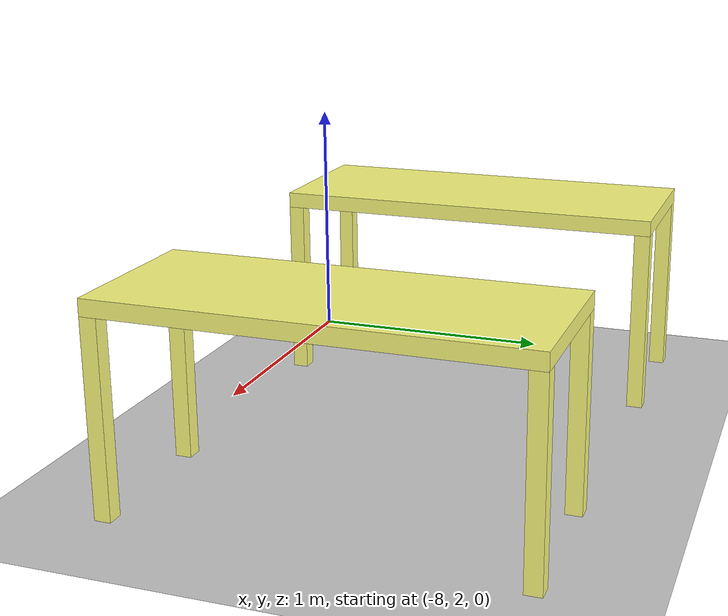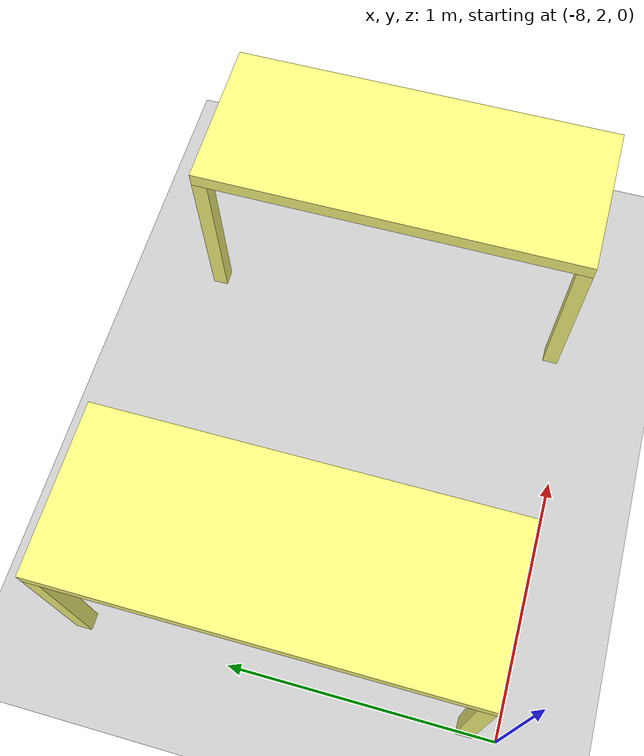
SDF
<sdf version="1.6">
 <world name="default">
  <model name="ground_plane">
   <static>1</static>
   <link name="link">
    <collision name="collision">
     <geometry><plane><normal>0 0 1</normal><size>100 100</size></plane></geometry>
     <surface><friction><ode><mu>100</mu><mu2>50</mu2></ode></friction></surface>
    </collision>
    <visual name="visual">
     <cast_shadows>0</cast_shadows>
     <geometry><plane><normal>0 0 1</normal><size>100 100</size></plane></geometry>
     <material>
      <script><uri>file://media/materials/scripts/gazebo.material</uri><name>Gazebo/Grey</name></script>
     </material>
    </visual>
   </link>
  </model>
  <model name="table">
   <link name="link_0">
    <pose>0 2e-06 0.304 0 -0 0</pose>
    <inertial>
     <mass>1</mass>
     <inertia>
      <ixx>0.166667</ixx>
      <ixy>0</ixy>
      <ixz>0</ixz>
      <iyy>0.166667</iyy>
      <iyz>0</iyz>
      <izz>0.166667</izz>
     </inertia>
    </inertial>
    <visual name="visual">
     <geometry><box><size>0.6 1.5 0.06</size></box></geometry>
     <material>
      <lighting>1</lighting>
      <script><uri>file://media/materials/scripts/gazebo.material</uri><name>Gazebo/Grey</name></script>
      <shader type="pixel"><normal_map>__default__</normal_map></shader>
      <ambient>1 1 0.5 1</ambient>
      <diffuse>0.7 0.7 0.7 1</diffuse>
      <specular>0.01 0.01 0.01 1</specular>
      <emissive>0 0 0 1</emissive>
     </material>
    </visual>
    <collision name="collision">
     <geometry><box><size>0.6 1.5 0.06</size></box></geometry>
     <surface>
      <friction>
       <ode><mu>1</mu><mu2>1</mu2><fdir1>0 0 0</fdir1><slip1>0</slip1><slip2>0</slip2></ode>
       <torsional>
        <coefficient>1</coefficient>
        <patch_radius>0</patch_radius>
        <surface_radius>0</surface_radius>
        <use_patch_radius>1</use_patch_radius>
        <ode><slip>0</slip></ode>
       </torsional>
      </friction>
      <bounce><restitution_coefficient>0</restitution_coefficient><threshold>1e+06</threshold></bounce>
      <contact>
       <collide_without_contact>0</collide_without_contact>
       <collide_without_contact_bitmask>1</collide_without_contact_bitmask>
       <collide_bitmask>1</collide_bitmask>
       <ode>
        <soft_cfm>0</soft_cfm>
        <soft_erp>0.2</soft_erp>
        <kp>1e+13</kp>
        <kd>1</kd>
        <max_vel>0.01</max_vel>
        <min_depth>0</min_depth>
       </ode>
       <bullet>
        <split_impulse>1</split_impulse>
        <split_impulse_penetration_threshold>-0.01</split_impulse_penetration_threshold>
        <soft_cfm>0</soft_cfm>
        <soft_erp>0.2</soft_erp>
        <kp>1e+13</kp>
        <kd>1</kd>
       </bullet>
      </contact>
     </surface>
    </collision>
   </link>
   <link name="link_1">
    <pose>0.27 -0.719998 -0.076 0 -0 0</pose>
    <inertial>
     <mass>1</mass>
     <inertia>
      <ixx>0.166667</ixx>
      <ixy>0</ixy>
      <ixz>0</ixz>
      <iyy>0.166667</iyy>
      <iyz>0</iyz>
      <izz>0.166667</izz>
     </inertia>
    </inertial>
    <visual name="visual">
     <geometry><box><size>0.06 0.06 0.7</size></box></geometry>
     <material>
      <lighting>1</lighting>
      <script><uri>file://media/materials/scripts/gazebo.material</uri><name>Gazebo/Grey</name></script>
      <shader type="pixel"><normal_map>__default__</normal_map></shader>
      <ambient>1 1 0.5 1</ambient>
      <diffuse>0.7 0.7 0.7 1</diffuse>
      <specular>0.01 0.01 0.01 1</specular>
      <emissive>0 0 0 1</emissive>
     </material>
    </visual>
    <collision name="collision">
     <geometry><box><size>0.06 0.06 0.7</size></box></geometry>
     <surface>
      <friction>
       <ode><mu>1</mu><mu2>1</mu2><fdir1>0 0 0</fdir1><slip1>0</slip1><slip2>0</slip2></ode>
       <torsional>
        <coefficient>1</coefficient>
        <patch_radius>0</patch_radius>
        <surface_radius>0</surface_radius>
        <use_patch_radius>1</use_patch_radius>
        <ode><slip>0</slip></ode>
       </torsional>
      </friction>
      <bounce><restitution_coefficient>0</restitution_coefficient><threshold>1e+06</threshold></bounce>
      <contact>
       <collide_without_contact>0</collide_without_contact>
       <collide_without_contact_bitmask>1</collide_without_contact_bitmask>
       <collide_bitmask>1</collide_bitmask>
       <ode>
        <soft_cfm>0</soft_cfm>
        <soft_erp>0.2</soft_erp>
        <kp>1e+13</kp>
        <kd>1</kd>
        <max_vel>0.01</max_vel>
        <min_depth>0</min_depth>
       </ode>
       <bullet>
        <split_impulse>1</split_impulse>
        <split_impulse_penetration_threshold>-0.01</split_impulse_penetration_threshold>
        <soft_cfm>0</soft_cfm>
        <soft_erp>0.2</soft_erp>
        <kp>1e+13</kp>
        <kd>1</kd>
       </bullet>
      </contact>
     </surface>
    </collision>
   </link>
   <link name="link_1_clone">
    <pose>-0.27 -0.719998 -0.076 0 -0 0</pose>
    <inertial>
     <mass>1</mass>
     <inertia>
      <ixx>0.166667</ixx>
      <ixy>0</ixy>
      <ixz>0</ixz>
      <iyy>0.166667</iyy>
      <iyz>0</iyz>
      <izz>0.166667</izz>
     </inertia>
    </inertial>
    <visual name="visual">
     <geometry><box><size>0.06 0.06 0.7</size></box></geometry>
     <material>
      <lighting>1</lighting>
      <script><uri>file://media/materials/scripts/gazebo.material</uri><name>Gazebo/Grey</name></script>
      <shader type="pixel"><normal_map>__default__</normal_map></shader>
      <ambient>1 1 0.5 1</ambient>
      <diffuse>0.7 0.7 0.7 1</diffuse>
      <specular>0.01 0.01 0.01 1</specular>
      <emissive>0 0 0 1</emissive>
     </material>
    </visual>
    <collision name="collision">
     <geometry><box><size>0.06 0.06 0.7</size></box></geometry>
     <surface>
      <friction>
       <ode><mu>1</mu><mu2>1</mu2><fdir1>0 0 0</fdir1><slip1>0</slip1><slip2>0</slip2></ode>
       <torsional>
        <coefficient>1</coefficient>
        <patch_radius>0</patch_radius>
        <surface_radius>0</surface_radius>
        <use_patch_radius>1</use_patch_radius>
        <ode><slip>0</slip></ode>
       </torsional>
      </friction>
      <bounce><restitution_coefficient>0</restitution_coefficient><threshold>1e+06</threshold></bounce>
      <contact>
       <collide_without_contact>0</collide_without_contact>
       <collide_without_contact_bitmask>1</collide_without_contact_bitmask>
       <collide_bitmask>1</collide_bitmask>
       <ode>
        <soft_cfm>0</soft_cfm>
        <soft_erp>0.2</soft_erp>
        <kp>1e+13</kp>
        <kd>1</kd>
        <max_vel>0.01</max_vel>
        <min_depth>0</min_depth>
       </ode>
       <bullet>
        <split_impulse>1</split_impulse>
        <split_impulse_penetration_threshold>-0.01</split_impulse_penetration_threshold>
        <soft_cfm>0</soft_cfm>
        <soft_erp>0.2</soft_erp>
        <kp>1e+13</kp>
        <kd>1</kd>
       </bullet>
      </contact>
     </surface>
    </collision>
   </link>
   <link name="link_1_clone_0">
    <pose>0.27 0.720002 -0.076 0 -0 0</pose>
    <inertial>
     <mass>1</mass>
     <inertia>
      <ixx>0.166667</ixx>
      <ixy>0</ixy>
      <ixz>0</ixz>
      <iyy>0.166667</iyy>
      <iyz>0</iyz>
      <izz>0.166667</izz>
     </inertia>
    </inertial>
    <visual name="visual">
     <geometry><box><size>0.06 0.06 0.7</size></box></geometry>
     <material>
      <lighting>1</lighting>
      <script><uri>file://media/materials/scripts/gazebo.material</uri><name>Gazebo/Grey</name></script>
      <shader type="pixel"><normal_map>__default__</normal_map></shader>
      <ambient>1 1 0.5 1</ambient>
      <diffuse>0.7 0.7 0.7 1</diffuse>
      <specular>0.01 0.01 0.01 1</specular>
      <emissive>0 0 0 1</emissive>
     </material>
    </visual>
    <collision name="collision">
     <geometry><box><size>0.06 0.06 0.7</size></box></geometry>
     <surface>
      <friction>
       <ode><mu>1</mu><mu2>1</mu2><fdir1>0 0 0</fdir1><slip1>0</slip1><slip2>0</slip2></ode>
       <torsional>
        <coefficient>1</coefficient>
        <patch_radius>0</patch_radius>
        <surface_radius>0</surface_radius>
        <use_patch_radius>1</use_patch_radius>
        <ode><slip>0</slip></ode>
       </torsional>
      </friction>
      <bounce><restitution_coefficient>0</restitution_coefficient><threshold>1e+06</threshold></bounce>
      <contact>
       <collide_without_contact>0</collide_without_contact>
       <collide_without_contact_bitmask>1</collide_without_contact_bitmask>
       <collide_bitmask>1</collide_bitmask>
       <ode>
        <soft_cfm>0</soft_cfm>
        <soft_erp>0.2</soft_erp>
        <kp>1e+13</kp>
        <kd>1</kd>
        <max_vel>0.01</max_vel>
        <min_depth>0</min_depth>
       </ode>
       <bullet>
        <split_impulse>1</split_impulse>
        <split_impulse_penetration_threshold>-0.01</split_impulse_penetration_threshold>
        <soft_cfm>0</soft_cfm>
        <soft_erp>0.2</soft_erp>
        <kp>1e+13</kp>
        <kd>1</kd>
       </bullet>
      </contact>
     </surface>
    </collision>
   </link>
   <link name="link_1_clone_1">
    <pose>-0.27 0.720002 -0.076 0 -0 0</pose>
    <inertial>
     <mass>1</mass>
     <inertia>
      <ixx>0.166667</ixx>
      <ixy>0</ixy>
      <ixz>0</ixz>
      <iyy>0.166667</iyy>
      <iyz>0</iyz>
      <izz>0.166667</izz>
     </inertia>
    </inertial>
    <visual name="visual">
     <geometry><box><size>0.06 0.06 0.7</size></box></geometry>
     <material>
      <lighting>1</lighting>
      <script><uri>file://media/materials/scripts/gazebo.material</uri><name>Gazebo/Grey</name></script>
      <shader type="pixel"><normal_map>__default__</normal_map></shader>
      <ambient>1 1 0.5 1</ambient>
      <diffuse>0.7 0.7 0.7 1</diffuse>
      <specular>0.01 0.01 0.01 1</specular>
      <emissive>0 0 0 1</emissive>
     </material>
    </visual>
    <collision name="collision">
     <geometry><box><size>0.06 0.06 0.7</size></box></geometry>
     <surface>
      <friction>
       <ode><mu>1</mu><mu2>1</mu2><fdir1>0 0 0</fdir1><slip1>0</slip1><slip2>0</slip2></ode>
       <torsional>
        <coefficient>1</coefficient>
        <patch_radius>0</patch_radius>
        <surface_radius>0</surface_radius>
        <use_patch_radius>1</use_patch_radius>
        <ode><slip>0</slip></ode>
       </torsional>
      </friction>
      <bounce><restitution_coefficient>0</restitution_coefficient><threshold>1e+06</threshold></bounce>
      <contact>
       <collide_without_contact>0</collide_without_contact>
       <collide_without_contact_bitmask>1</collide_without_contact_bitmask>
       <collide_bitmask>1</collide_bitmask>
       <ode>
        <soft_cfm>0</soft_cfm>
        <soft_erp>0.2</soft_erp>
        <kp>1e+13</kp>
        <kd>1</kd>
        <max_vel>0.01</max_vel>
        <min_depth>0</min_depth>
       </ode>
       <bullet>
        <split_impulse>1</split_impulse>
        <split_impulse_penetration_threshold>-0.01</split_impulse_penetration_threshold>
        <soft_cfm>0</soft_cfm>
        <soft_erp>0.2</soft_erp>
        <kp>1e+13</kp>
        <kd>1</kd>
       </bullet>
      </contact>
     </surface>
    </collision>
   </link>
   <joint name="link_0_JOINT_0" type="fixed">
    <parent>link_0</parent>
    <child>link_1</child>
    <physics>
     <ode><limit><cfm>0</cfm><erp>0.2</erp></limit><suspension><cfm>0</cfm><erp>0.2</erp></suspension></ode>
    </physics>
   </joint>
   <joint name="link_0_JOINT_1" type="fixed">
    <parent>link_0</parent>
    <child>link_1_clone</child>
    <physics>
     <ode><limit><cfm>0</cfm><erp>0.2</erp></limit><suspension><cfm>0</cfm><erp>0.2</erp></suspension></ode>
    </physics>
   </joint>
   <joint name="link_0_JOINT_2" type="fixed">
    <parent>link_0</parent>
    <child>link_1_clone_1</child>
    <physics>
     <ode><limit><cfm>0</cfm><erp>0.2</erp></limit><suspension><cfm>0</cfm><erp>0.2</erp></suspension></ode>
    </physics>
   </joint>
   <joint name="link_0_JOINT_3" type="fixed">
    <parent>link_0</parent>
    <child>link_1_clone_0</child>
    <physics>
     <ode><limit><cfm>0</cfm><erp>0.2</erp></limit><suspension><cfm>0</cfm><erp>0.2</erp></suspension></ode>
    </physics>
   </joint>
   <static>0</static>
   <pose>-7.70901 2.83687 0.426 -0 2e-06 -0.000236</pose>
  </model>
  <model name="table_clone">
   <link name="link_0">
    <pose>0 2e-06 0.304 0 -0 0</pose>
    <inertial>
     <mass>1</mass>
     <inertia>
      <ixx>0.166667</ixx>
      <ixy>0</ixy>
      <ixz>0</ixz>
      <iyy>0.166667</iyy>
      <iyz>0</iyz>
      <izz>0.166667</izz>
     </inertia>
    </inertial>
    <visual name="visual">
     <geometry><box><size>0.6 1.5 0.06</size></box></geometry>
     <material>
      <lighting>1</lighting>
      <script><uri>file://media/materials/scripts/gazebo.material</uri><name>Gazebo/Grey</name></script>
      <shader type="pixel"><normal_map>__default__</normal_map></shader>
      <ambient>1 1 0.5 1</ambient>
      <diffuse>0.7 0.7 0.7 1</diffuse>
      <specular>0.01 0.01 0.01 1</specular>
      <emissive>0 0 0 1</emissive>
     </material>
    </visual>
    <collision name="collision">
     <geometry><box><size>0.6 1.5 0.06</size></box></geometry>
     <surface>
      <friction>
       <ode><mu>1</mu><mu2>1</mu2><fdir1>0 0 0</fdir1><slip1>0</slip1><slip2>0</slip2></ode>
       <torsional>
        <coefficient>1</coefficient>
        <patch_radius>0</patch_radius>
        <surface_radius>0</surface_radius>
        <use_patch_radius>1</use_patch_radius>
        <ode><slip>0</slip></ode>
       </torsional>
      </friction>
      <bounce><restitution_coefficient>0</restitution_coefficient><threshold>1e+06</threshold></bounce>
      <contact>
       <collide_without_contact>0</collide_without_contact>
       <collide_without_contact_bitmask>1</collide_without_contact_bitmask>
       <collide_bitmask>1</collide_bitmask>
       <ode>
        <soft_cfm>0</soft_cfm>
        <soft_erp>0.2</soft_erp>
        <kp>1e+13</kp>
        <kd>1</kd>
        <max_vel>0.01</max_vel>
        <min_depth>0</min_depth>
       </ode>
       <bullet>
        <split_impulse>1</split_impulse>
        <split_impulse_penetration_threshold>-0.01</split_impulse_penetration_threshold>
        <soft_cfm>0</soft_cfm>
        <soft_erp>0.2</soft_erp>
        <kp>1e+13</kp>
        <kd>1</kd>
       </bullet>
      </contact>
     </surface>
    </collision>
   </link>
   <link name="link_1">
    <pose>0.27 -0.719998 -0.076 0 -0 0</pose>
    <inertial>
     <mass>1</mass>
     <inertia>
      <ixx>0.166667</ixx>
      <ixy>0</ixy>
      <ixz>0</ixz>
      <iyy>0.166667</iyy>
      <iyz>0</iyz>
      <izz>0.166667</izz>
     </inertia>
    </inertial>
    <visual name="visual">
     <geometry><box><size>0.06 0.06 0.7</size></box></geometry>
     <material>
      <lighting>1</lighting>
      <script><uri>file://media/materials/scripts/gazebo.material</uri><name>Gazebo/Grey</name></script>
      <shader type="pixel"><normal_map>__default__</normal_map></shader>
      <ambient>1 1 0.5 1</ambient>
      <diffuse>0.7 0.7 0.7 1</diffuse>
      <specular>0.01 0.01 0.01 1</specular>
      <emissive>0 0 0 1</emissive>
     </material>
    </visual>
    <collision name="collision">
     <geometry><box><size>0.06 0.06 0.7</size></box></geometry>
     <surface>
      <friction>
       <ode><mu>1</mu><mu2>1</mu2><fdir1>0 0 0</fdir1><slip1>0</slip1><slip2>0</slip2></ode>
       <torsional>
        <coefficient>1</coefficient>
        <patch_radius>0</patch_radius>
        <surface_radius>0</surface_radius>
        <use_patch_radius>1</use_patch_radius>
        <ode><slip>0</slip></ode>
       </torsional>
      </friction>
      <bounce><restitution_coefficient>0</restitution_coefficient><threshold>1e+06</threshold></bounce>
      <contact>
       <collide_without_contact>0</collide_without_contact>
       <collide_without_contact_bitmask>1</collide_without_contact_bitmask>
       <collide_bitmask>1</collide_bitmask>
       <ode>
        <soft_cfm>0</soft_cfm>
        <soft_erp>0.2</soft_erp>
        <kp>1e+13</kp>
        <kd>1</kd>
        <max_vel>0.01</max_vel>
        <min_depth>0</min_depth>
       </ode>
       <bullet>
        <split_impulse>1</split_impulse>
        <split_impulse_penetration_threshold>-0.01</split_impulse_penetration_threshold>
        <soft_cfm>0</soft_cfm>
        <soft_erp>0.2</soft_erp>
        <kp>1e+13</kp>
        <kd>1</kd>
       </bullet>
      </contact>
     </surface>
    </collision>
   </link>
   <link name="link_1_clone">
    <pose>-0.27 -0.719998 -0.076 0 -0 0</pose>
    <inertial>
     <mass>1</mass>
     <inertia>
      <ixx>0.166667</ixx>
      <ixy>0</ixy>
      <ixz>0</ixz>
      <iyy>0.166667</iyy>
      <iyz>0</iyz>
      <izz>0.166667</izz>
     </inertia>
    </inertial>
    <visual name="visual">
     <geometry><box><size>0.06 0.06 0.7</size></box></geometry>
     <material>
      <lighting>1</lighting>
      <script><uri>file://media/materials/scripts/gazebo.material</uri><name>Gazebo/Grey</name></script>
      <shader type="pixel"><normal_map>__default__</normal_map></shader>
      <ambient>1 1 0.5 1</ambient>
      <diffuse>0.7 0.7 0.7 1</diffuse>
      <specular>0.01 0.01 0.01 1</specular>
      <emissive>0 0 0 1</emissive>
     </material>
    </visual>
    <collision name="collision">
     <geometry><box><size>0.06 0.06 0.7</size></box></geometry>
     <surface>
      <friction>
       <ode><mu>1</mu><mu2>1</mu2><fdir1>0 0 0</fdir1><slip1>0</slip1><slip2>0</slip2></ode>
       <torsional>
        <coefficient>1</coefficient>
        <patch_radius>0</patch_radius>
        <surface_radius>0</surface_radius>
        <use_patch_radius>1</use_patch_radius>
        <ode><slip>0</slip></ode>
       </torsional>
      </friction>
      <bounce><restitution_coefficient>0</restitution_coefficient><threshold>1e+06</threshold></bounce>
      <contact>
       <collide_without_contact>0</collide_without_contact>
       <collide_without_contact_bitmask>1</collide_without_contact_bitmask>
       <collide_bitmask>1</collide_bitmask>
       <ode>
        <soft_cfm>0</soft_cfm>
        <soft_erp>0.2</soft_erp>
        <kp>1e+13</kp>
        <kd>1</kd>
        <max_vel>0.01</max_vel>
        <min_depth>0</min_depth>
       </ode>
       <bullet>
        <split_impulse>1</split_impulse>
        <split_impulse_penetration_threshold>-0.01</split_impulse_penetration_threshold>
        <soft_cfm>0</soft_cfm>
        <soft_erp>0.2</soft_erp>
        <kp>1e+13</kp>
        <kd>1</kd>
       </bullet>
      </contact>
     </surface>
    </collision>
   </link>
   <link name="link_1_clone_0">
    <pose>0.27 0.720002 -0.076 0 -0 0</pose>
    <inertial>
     <mass>1</mass>
     <inertia>
      <ixx>0.166667</ixx>
      <ixy>0</ixy>
      <ixz>0</ixz>
      <iyy>0.166667</iyy>
      <iyz>0</iyz>
      <izz>0.166667</izz>
     </inertia>
    </inertial>
    <visual name="visual">
     <geometry><box><size>0.06 0.06 0.7</size></box></geometry>
     <material>
      <lighting>1</lighting>
      <script><uri>file://media/materials/scripts/gazebo.material</uri><name>Gazebo/Grey</name></script>
      <shader type="pixel"><normal_map>__default__</normal_map></shader>
      <ambient>1 1 0.5 1</ambient>
      <diffuse>0.7 0.7 0.7 1</diffuse>
      <specular>0.01 0.01 0.01 1</specular>
      <emissive>0 0 0 1</emissive>
     </material>
    </visual>
    <collision name="collision">
     <geometry><box><size>0.06 0.06 0.7</size></box></geometry>
     <surface>
      <friction>
       <ode><mu>1</mu><mu2>1</mu2><fdir1>0 0 0</fdir1><slip1>0</slip1><slip2>0</slip2></ode>
       <torsional>
        <coefficient>1</coefficient>
        <patch_radius>0</patch_radius>
        <surface_radius>0</surface_radius>
        <use_patch_radius>1</use_patch_radius>
        <ode><slip>0</slip></ode>
       </torsional>
      </friction>
      <bounce><restitution_coefficient>0</restitution_coefficient><threshold>1e+06</threshold></bounce>
      <contact>
       <collide_without_contact>0</collide_without_contact>
       <collide_without_contact_bitmask>1</collide_without_contact_bitmask>
       <collide_bitmask>1</collide_bitmask>
       <ode>
        <soft_cfm>0</soft_cfm>
        <soft_erp>0.2</soft_erp>
        <kp>1e+13</kp>
        <kd>1</kd>
        <max_vel>0.01</max_vel>
        <min_depth>0</min_depth>
       </ode>
       <bullet>
        <split_impulse>1</split_impulse>
        <split_impulse_penetration_threshold>-0.01</split_impulse_penetration_threshold>
        <soft_cfm>0</soft_cfm>
        <soft_erp>0.2</soft_erp>
        <kp>1e+13</kp>
        <kd>1</kd>
       </bullet>
      </contact>
     </surface>
    </collision>
   </link>
   <link name="link_1_clone_1">
    <pose>-0.27 0.720002 -0.076 0 -0 0</pose>
    <inertial>
     <mass>1</mass>
     <inertia>
      <ixx>0.166667</ixx>
      <ixy>0</ixy>
      <ixz>0</ixz>
      <iyy>0.166667</iyy>
      <iyz>0</iyz>
      <izz>0.166667</izz>
     </inertia>
    </inertial>
    <visual name="visual">
     <geometry><box><size>0.06 0.06 0.7</size></box></geometry>
     <material>
      <lighting>1</lighting>
      <script><uri>file://media/materials/scripts/gazebo.material</uri><name>Gazebo/Grey</name></script>
      <shader type="pixel"><normal_map>__default__</normal_map></shader>
      <ambient>1 1 0.5 1</ambient>
      <diffuse>0.7 0.7 0.7 1</diffuse>
      <specular>0.01 0.01 0.01 1</specular>
      <emissive>0 0 0 1</emissive>
     </material>
    </visual>
    <collision name="collision">
     <geometry><box><size>0.06 0.06 0.7</size></box></geometry>
     <surface>
      <friction>
       <ode><mu>1</mu><mu2>1</mu2><fdir1>0 0 0</fdir1><slip1>0</slip1><slip2>0</slip2></ode>
       <torsional>
        <coefficient>1</coefficient>
        <patch_radius>0</patch_radius>
        <surface_radius>0</surface_radius>
        <use_patch_radius>1</use_patch_radius>
        <ode><slip>0</slip></ode>
       </torsional>
      </friction>
      <bounce><restitution_coefficient>0</restitution_coefficient><threshold>1e+06</threshold></bounce>
      <contact>
       <collide_without_contact>0</collide_without_contact>
       <collide_without_contact_bitmask>1</collide_without_contact_bitmask>
       <collide_bitmask>1</collide_bitmask>
       <ode>
        <soft_cfm>0</soft_cfm>
        <soft_erp>0.2</soft_erp>
        <kp>1e+13</kp>
        <kd>1</kd>
        <max_vel>0.01</max_vel>
        <min_depth>0</min_depth>
       </ode>
       <bullet>
        <split_impulse>1</split_impulse>
        <split_impulse_penetration_threshold>-0.01</split_impulse_penetration_threshold>
        <soft_cfm>0</soft_cfm>
        <soft_erp>0.2</soft_erp>
        <kp>1e+13</kp>
        <kd>1</kd>
       </bullet>
      </contact>
     </surface>
    </collision>
   </link>
   <joint name="link_0_JOINT_0" type="fixed">
    <parent>link_0</parent>
    <child>link_1</child>
    <physics>
     <ode><limit><cfm>0</cfm><erp>0.2</erp></limit><suspension><cfm>0</cfm><erp>0.2</erp></suspension></ode>
    </physics>
   </joint>
   <joint name="link_0_JOINT_1" type="fixed">
    <parent>link_0</parent>
    <child>link_1_clone</child>
    <physics>
     <ode><limit><cfm>0</cfm><erp>0.2</erp></limit><suspension><cfm>0</cfm><erp>0.2</erp></suspension></ode>
    </physics>
   </joint>
   <joint name="link_0_JOINT_2" type="fixed">
    <parent>link_0</parent>
    <child>link_1_clone_1</child>
    <physics>
     <ode><limit><cfm>0</cfm><erp>0.2</erp></limit><suspension><cfm>0</cfm><erp>0.2</erp></suspension></ode>
    </physics>
   </joint>
   <joint name="link_0_JOINT_3" type="fixed">
    <parent>link_0</parent>
    <child>link_1_clone_0</child>
    <physics>
     <ode><limit><cfm>0</cfm><erp>0.2</erp></limit><suspension><cfm>0</cfm><erp>0.2</erp></suspension></ode>
    </physics>
   </joint>
   <static>0</static>
   <pose>-6.17182 2.81542 0.426 -0 2e-06 -0.000236</pose>
  </model>
 </world>
</sdf>
